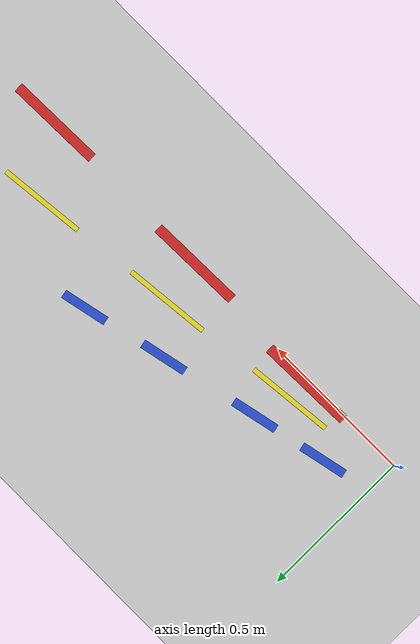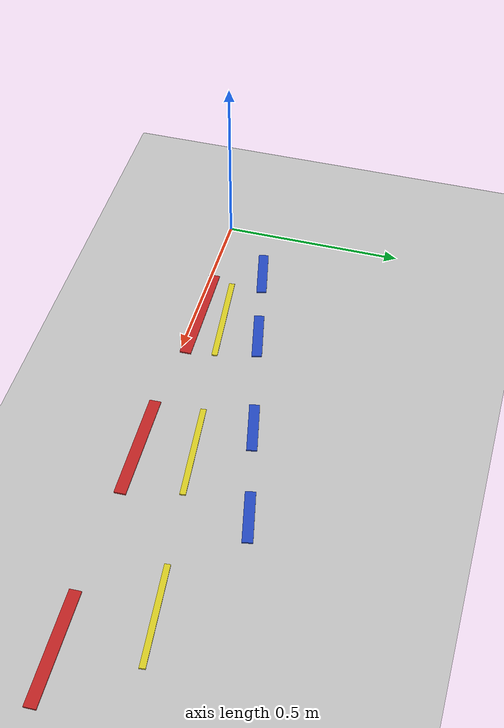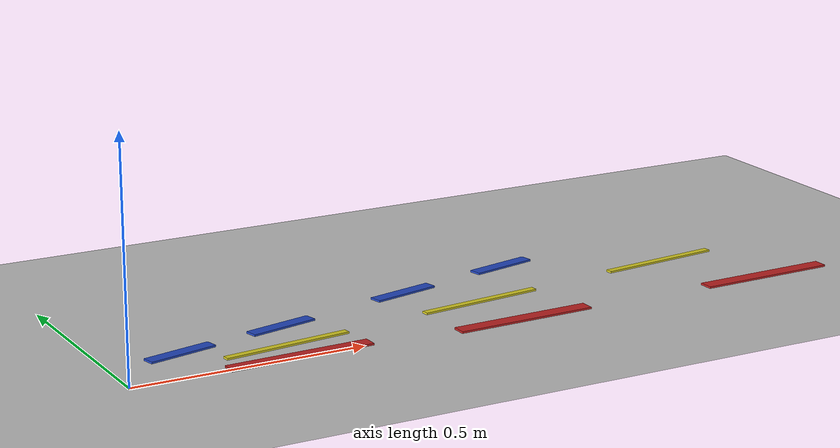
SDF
<sdf version="1.7">
 <world name="curve5">
  <model name="ground_plane">
   <static>1</static>
   <link name="link">
    <collision name="collision">
     <geometry><plane><normal>0 0 1</normal><size>100 100</size></plane></geometry>
     <surface><friction><ode><mu>100</mu><mu2>50</mu2></ode></friction></surface>
    </collision>
    <visual name="visual">
     <cast_shadows>0</cast_shadows>
     <geometry><plane><normal>0 0 1</normal><size>100 100</size></plane></geometry>
     <material>
      <script><uri>file://media/materials/scripts/gazebo.material</uri><name>Gazebo/Grey</name></script>
     </material>
    </visual>
   </link>
  </model>
  <model name="curveRoad_try4">
   <link name="link_clone_0_clone_clone_1">
    <inertial>
     <mass>2.24783e-05</mass>
     <inertia>
      <ixx>5.11852e-10</ixx>
      <ixy>0</ixy>
      <ixz>0</ixz>
      <iyy>1.4911e-07</iyy>
      <iyz>0</iyz>
      <izz>1.49526e-07</izz>
     </inertia>
    </inertial>
    <pose>0.803121 -0.723011 2.2e-05 -3e-05 3e-06 0.102518</pose>
    <visual name="visual">
     <geometry><box><size>0.282093 0.015736 0.005062</size></box></geometry>
     <material>
      <script><name>Gazebo/Yellow</name><uri>file://media/materials/scripts/gazebo.material</uri></script>
      <shader type="pixel"><normal_map>__default__</normal_map></shader>
      <ambient>1 1 0 1</ambient>
      <diffuse>1 1 0 1</diffuse>
      <emissive>0 0 0 1</emissive>
     </material>
    </visual>
    <collision name="collision">
     <geometry><box><size>0.282093 0.015736 0.005062</size></box></geometry>
     <surface>
      <friction>
       <ode><mu>1</mu><mu2>1</mu2><fdir1>0 0 0</fdir1><slip1>0</slip1><slip2>0</slip2></ode>
       <torsional>
        <coefficient>1</coefficient>
        <patch_radius>0</patch_radius>
        <surface_radius>0</surface_radius>
        <use_patch_radius>1</use_patch_radius>
        <ode><slip>0</slip></ode>
       </torsional>
      </friction>
      <bounce><restitution_coefficient>0</restitution_coefficient><threshold>1e+06</threshold></bounce>
      <contact>
       <collide_without_contact>0</collide_without_contact>
       <collide_without_contact_bitmask>1</collide_without_contact_bitmask>
       <collide_bitmask>1</collide_bitmask>
       <ode>
        <soft_cfm>0</soft_cfm>
        <soft_erp>0.2</soft_erp>
        <kp>1e+13</kp>
        <kd>1</kd>
        <max_vel>0.01</max_vel>
        <min_depth>0</min_depth>
       </ode>
       <bullet>
        <split_impulse>1</split_impulse>
        <split_impulse_penetration_threshold>-0.01</split_impulse_penetration_threshold>
        <soft_cfm>0</soft_cfm>
        <soft_erp>0.2</soft_erp>
        <kp>1e+13</kp>
        <kd>1</kd>
       </bullet>
      </contact>
     </surface>
    </collision>
   </link>
   <link name="link_clone_0_clone_clone_2">
    <inertial>
     <mass>2.24783e-05</mass>
     <inertia>
      <ixx>5.11852e-10</ixx>
      <ixy>0</ixy>
      <ixz>0</ixz>
      <iyy>1.4911e-07</iyy>
      <iyz>0</iyz>
      <izz>1.49526e-07</izz>
     </inertia>
    </inertial>
    <pose>0.316059 -0.778554 2.3e-05 -3e-05 3e-06 0.102518</pose>
    <visual name="visual">
     <geometry><box><size>0.282093 0.015736 0.005062</size></box></geometry>
     <material>
      <script><name>Gazebo/Yellow</name><uri>file://media/materials/scripts/gazebo.material</uri></script>
      <shader type="pixel"><normal_map>__default__</normal_map></shader>
      <ambient>1 1 0 1</ambient>
      <diffuse>1 1 0 1</diffuse>
      <emissive>0 0 0 1</emissive>
     </material>
    </visual>
    <collision name="collision">
     <geometry><box><size>0.282093 0.015736 0.005062</size></box></geometry>
     <surface>
      <friction>
       <ode><mu>1</mu><mu2>1</mu2><fdir1>0 0 0</fdir1><slip1>0</slip1><slip2>0</slip2></ode>
       <torsional>
        <coefficient>1</coefficient>
        <patch_radius>0</patch_radius>
        <surface_radius>0</surface_radius>
        <use_patch_radius>1</use_patch_radius>
        <ode><slip>0</slip></ode>
       </torsional>
      </friction>
      <bounce><restitution_coefficient>0</restitution_coefficient><threshold>1e+06</threshold></bounce>
      <contact>
       <collide_without_contact>0</collide_without_contact>
       <collide_without_contact_bitmask>1</collide_without_contact_bitmask>
       <collide_bitmask>1</collide_bitmask>
       <ode>
        <soft_cfm>0</soft_cfm>
        <soft_erp>0.2</soft_erp>
        <kp>1e+13</kp>
        <kd>1</kd>
        <max_vel>0.01</max_vel>
        <min_depth>0</min_depth>
       </ode>
       <bullet>
        <split_impulse>1</split_impulse>
        <split_impulse_penetration_threshold>-0.01</split_impulse_penetration_threshold>
        <soft_cfm>0</soft_cfm>
        <soft_erp>0.2</soft_erp>
        <kp>1e+13</kp>
        <kd>1</kd>
       </bullet>
      </contact>
     </surface>
    </collision>
   </link>
   <link name="link_clone_0_clone_clone_3">
    <inertial>
     <mass>2.24783e-05</mass>
     <inertia>
      <ixx>5.11852e-10</ixx>
      <ixy>0</ixy>
      <ixz>0</ixz>
      <iyy>1.4911e-07</iyy>
      <iyz>0</iyz>
      <izz>1.49526e-07</izz>
     </inertia>
    </inertial>
    <pose>-0.158205 -0.834094 2.4e-05 -3e-05 3e-06 0.102518</pose>
    <visual name="visual">
     <geometry><box><size>0.282093 0.015736 0.005062</size></box></geometry>
     <material>
      <script><name>Gazebo/Yellow</name><uri>file://media/materials/scripts/gazebo.material</uri></script>
      <shader type="pixel"><normal_map>__default__</normal_map></shader>
      <ambient>1 1 0 1</ambient>
      <diffuse>1 1 0 1</diffuse>
      <emissive>0 0 0 1</emissive>
     </material>
    </visual>
    <collision name="collision">
     <geometry><box><size>0.282093 0.015736 0.005062</size></box></geometry>
     <surface>
      <friction>
       <ode><mu>1</mu><mu2>1</mu2><fdir1>0 0 0</fdir1><slip1>0</slip1><slip2>0</slip2></ode>
       <torsional>
        <coefficient>1</coefficient>
        <patch_radius>0</patch_radius>
        <surface_radius>0</surface_radius>
        <use_patch_radius>1</use_patch_radius>
        <ode><slip>0</slip></ode>
       </torsional>
      </friction>
      <bounce><restitution_coefficient>0</restitution_coefficient><threshold>1e+06</threshold></bounce>
      <contact>
       <collide_without_contact>0</collide_without_contact>
       <collide_without_contact_bitmask>1</collide_without_contact_bitmask>
       <collide_bitmask>1</collide_bitmask>
       <ode>
        <soft_cfm>0</soft_cfm>
        <soft_erp>0.2</soft_erp>
        <kp>1e+13</kp>
        <kd>1</kd>
        <max_vel>0.01</max_vel>
        <min_depth>0</min_depth>
       </ode>
       <bullet>
        <split_impulse>1</split_impulse>
        <split_impulse_penetration_threshold>-0.01</split_impulse_penetration_threshold>
        <soft_cfm>0</soft_cfm>
        <soft_erp>0.2</soft_erp>
        <kp>1e+13</kp>
        <kd>1</kd>
       </bullet>
      </contact>
     </surface>
    </collision>
   </link>
   <link name="link_clone_clone_0_clone_clone_clone_0">
    <inertial>
     <mass>4.94957e-05</mass>
     <inertia>
      <ixx>4.15553e-09</ixx>
      <ixy>0</ixy>
      <ixz>0</ixz>
      <iyy>4.0181e-07</iyy>
      <iyz>0</iyz>
      <izz>4.05754e-07</izz>
     </inertia>
    </inertial>
    <pose>0.944116 -0.919914 5.5e-05 -5e-05 3e-06 0.023716</pose>
    <visual name="visual">
     <geometry><box><size>0.312076 0.031335 0.005062</size></box></geometry>
     <material>
      <script><name>Gazebo/Red</name><uri>file://media/materials/scripts/gazebo.material</uri></script>
      <shader type="pixel"><normal_map>__default__</normal_map></shader>
      <ambient>1 0 0 1</ambient>
      <diffuse>1 0 0 1</diffuse>
      <emissive>1 0 0 1</emissive>
      <specular>1 0 0 1</specular>
     </material>
    </visual>
    <collision name="collision">
     <geometry><box><size>0.312076 0.031335 0.005062</size></box></geometry>
     <surface>
      <friction>
       <ode><mu>1</mu><mu2>1</mu2><fdir1>0 0 0</fdir1><slip1>0</slip1><slip2>0</slip2></ode>
       <torsional>
        <coefficient>1</coefficient>
        <patch_radius>0</patch_radius>
        <surface_radius>0</surface_radius>
        <use_patch_radius>1</use_patch_radius>
        <ode><slip>0</slip></ode>
       </torsional>
      </friction>
      <bounce><restitution_coefficient>0</restitution_coefficient><threshold>1e+06</threshold></bounce>
      <contact>
       <collide_without_contact>0</collide_without_contact>
       <collide_without_contact_bitmask>1</collide_without_contact_bitmask>
       <collide_bitmask>1</collide_bitmask>
       <ode>
        <soft_cfm>0</soft_cfm>
        <soft_erp>0.2</soft_erp>
        <kp>1e+13</kp>
        <kd>1</kd>
        <max_vel>0.01</max_vel>
        <min_depth>0</min_depth>
       </ode>
       <bullet>
        <split_impulse>1</split_impulse>
        <split_impulse_penetration_threshold>-0.01</split_impulse_penetration_threshold>
        <soft_cfm>0</soft_cfm>
        <soft_erp>0.2</soft_erp>
        <kp>1e+13</kp>
        <kd>1</kd>
       </bullet>
      </contact>
     </surface>
    </collision>
   </link>
   <link name="link_clone_clone_0_clone_clone_clone_0_clone">
    <inertial>
     <mass>4.94957e-05</mass>
     <inertia>
      <ixx>4.15553e-09</ixx>
      <ixy>0</ixy>
      <ixz>0</ixz>
      <iyy>4.0181e-07</iyy>
      <iyz>0</iyz>
      <izz>4.05754e-07</izz>
     </inertia>
    </inertial>
    <pose>0.337418 -0.919914 6.4e-05 -6e-05 4e-06 0.023716</pose>
    <visual name="visual">
     <geometry><box><size>0.312076 0.031335 0.005062</size></box></geometry>
     <material>
      <script><name>Gazebo/Red</name><uri>file://media/materials/scripts/gazebo.material</uri></script>
      <shader type="pixel"><normal_map>__default__</normal_map></shader>
      <ambient>1 0 0 1</ambient>
      <diffuse>1 0 0 1</diffuse>
      <emissive>1 0 0 1</emissive>
      <specular>1 0 0 1</specular>
     </material>
    </visual>
    <collision name="collision">
     <geometry><box><size>0.312076 0.031335 0.005062</size></box></geometry>
     <surface>
      <friction>
       <ode><mu>1</mu><mu2>1</mu2><fdir1>0 0 0</fdir1><slip1>0</slip1><slip2>0</slip2></ode>
       <torsional>
        <coefficient>1</coefficient>
        <patch_radius>0</patch_radius>
        <surface_radius>0</surface_radius>
        <use_patch_radius>1</use_patch_radius>
        <ode><slip>0</slip></ode>
       </torsional>
      </friction>
      <bounce><restitution_coefficient>0</restitution_coefficient><threshold>1e+06</threshold></bounce>
      <contact>
       <collide_without_contact>0</collide_without_contact>
       <collide_without_contact_bitmask>1</collide_without_contact_bitmask>
       <collide_bitmask>1</collide_bitmask>
       <ode>
        <soft_cfm>0</soft_cfm>
        <soft_erp>0.2</soft_erp>
        <kp>1e+13</kp>
        <kd>1</kd>
        <max_vel>0.01</max_vel>
        <min_depth>0</min_depth>
       </ode>
       <bullet>
        <split_impulse>1</split_impulse>
        <split_impulse_penetration_threshold>-0.01</split_impulse_penetration_threshold>
        <soft_cfm>0</soft_cfm>
        <soft_erp>0.2</soft_erp>
        <kp>1e+13</kp>
        <kd>1</kd>
       </bullet>
      </contact>
     </surface>
    </collision>
   </link>
   <link name="link_clone_clone_0_clone_clone_clone_0_clone_0">
    <inertial>
     <mass>4.94957e-05</mass>
     <inertia>
      <ixx>4.15553e-09</ixx>
      <ixy>0</ixy>
      <ixz>0</ixz>
      <iyy>4.0181e-07</iyy>
      <iyz>0</iyz>
      <izz>4.05754e-07</izz>
     </inertia>
    </inertial>
    <pose>-0.162473 -0.902817 6.4e-05 -6e-05 4e-06 0.023716</pose>
    <visual name="visual">
     <geometry><box><size>0.312076 0.031335 0.005062</size></box></geometry>
     <material>
      <script><name>Gazebo/Red</name><uri>file://media/materials/scripts/gazebo.material</uri></script>
      <shader type="pixel"><normal_map>__default__</normal_map></shader>
      <ambient>1 0 0 1</ambient>
      <diffuse>1 0 0 1</diffuse>
      <emissive>1 0 0 1</emissive>
      <specular>1 0 0 1</specular>
     </material>
    </visual>
    <collision name="collision">
     <geometry><box><size>0.312076 0.031335 0.005062</size></box></geometry>
     <surface>
      <friction>
       <ode><mu>1</mu><mu2>1</mu2><fdir1>0 0 0</fdir1><slip1>0</slip1><slip2>0</slip2></ode>
       <torsional>
        <coefficient>1</coefficient>
        <patch_radius>0</patch_radius>
        <surface_radius>0</surface_radius>
        <use_patch_radius>1</use_patch_radius>
        <ode><slip>0</slip></ode>
       </torsional>
      </friction>
      <bounce><restitution_coefficient>0</restitution_coefficient><threshold>1e+06</threshold></bounce>
      <contact>
       <collide_without_contact>0</collide_without_contact>
       <collide_without_contact_bitmask>1</collide_without_contact_bitmask>
       <collide_bitmask>1</collide_bitmask>
       <ode>
        <soft_cfm>0</soft_cfm>
        <soft_erp>0.2</soft_erp>
        <kp>1e+13</kp>
        <kd>1</kd>
        <max_vel>0.01</max_vel>
        <min_depth>0</min_depth>
       </ode>
       <bullet>
        <split_impulse>1</split_impulse>
        <split_impulse_penetration_threshold>-0.01</split_impulse_penetration_threshold>
        <soft_cfm>0</soft_cfm>
        <soft_erp>0.2</soft_erp>
        <kp>1e+13</kp>
        <kd>1</kd>
       </bullet>
      </contact>
     </surface>
    </collision>
   </link>
   <link name="link_clone_clone_clone_clone_clone_0_clone_0_clone_1">
    <inertial>
     <mass>2.16157e-05</mass>
     <inertia>
      <ixx>1.43991e-09</ixx>
      <ixy>0</ixy>
      <ixz>0</ixz>
      <iyy>4.24872e-08</iyy>
      <iyz>0</iyz>
      <izz>4.38348e-08</izz>
     </inertia>
    </inertial>
    <pose>0.479094 -0.586894 2.3e-05 -7e-05 1.5e-05 0.213842</pose>
    <visual name="visual">
     <geometry><box><size>0.153497 0.027816 0.005062</size></box></geometry>
     <material>
      <script><name>Gazebo/Blue</name><uri>file://media/materials/scripts/gazebo.material</uri></script>
      <shader type="pixel"><normal_map>__default__</normal_map></shader>
      <ambient>0 0 1 1</ambient>
      <diffuse>0 0 1 1</diffuse>
      <emissive>0 0 1 1</emissive>
      <specular>0 0 1 1</specular>
     </material>
    </visual>
    <collision name="collision">
     <geometry><box><size>0.153497 0.027816 0.005062</size></box></geometry>
     <surface>
      <friction>
       <ode><mu>1</mu><mu2>1</mu2><fdir1>0 0 0</fdir1><slip1>0</slip1><slip2>0</slip2></ode>
       <torsional>
        <coefficient>1</coefficient>
        <patch_radius>0</patch_radius>
        <surface_radius>0</surface_radius>
        <use_patch_radius>1</use_patch_radius>
        <ode><slip>0</slip></ode>
       </torsional>
      </friction>
      <bounce><restitution_coefficient>0</restitution_coefficient><threshold>1e+06</threshold></bounce>
      <contact>
       <collide_without_contact>0</collide_without_contact>
       <collide_without_contact_bitmask>1</collide_without_contact_bitmask>
       <collide_bitmask>1</collide_bitmask>
       <ode>
        <soft_cfm>0</soft_cfm>
        <soft_erp>0.2</soft_erp>
        <kp>1e+13</kp>
        <kd>1</kd>
        <max_vel>0.01</max_vel>
        <min_depth>0</min_depth>
       </ode>
       <bullet>
        <split_impulse>1</split_impulse>
        <split_impulse_penetration_threshold>-0.01</split_impulse_penetration_threshold>
        <soft_cfm>0</soft_cfm>
        <soft_erp>0.2</soft_erp>
        <kp>1e+13</kp>
        <kd>1</kd>
       </bullet>
      </contact>
     </surface>
    </collision>
   </link>
   <link name="link_clone_clone_clone_clone_clone_0_clone_0_clone_2">
    <inertial>
     <mass>2.16157e-05</mass>
     <inertia>
      <ixx>1.43991e-09</ixx>
      <ixy>0</ixy>
      <ixz>0</ixz>
      <iyy>4.24872e-08</iyy>
      <iyz>0</iyz>
      <izz>4.38348e-08</izz>
     </inertia>
    </inertial>
    <pose>0.201361 -0.650979 2.4e-05 -7e-05 1.5e-05 0.213842</pose>
    <visual name="visual">
     <geometry><box><size>0.153497 0.027816 0.005062</size></box></geometry>
     <material>
      <script><name>Gazebo/Blue</name><uri>file://media/materials/scripts/gazebo.material</uri></script>
      <shader type="pixel"><normal_map>__default__</normal_map></shader>
      <ambient>0 0 1 1</ambient>
      <diffuse>0 0 1 1</diffuse>
      <emissive>0 0 1 1</emissive>
      <specular>0 0 1 1</specular>
     </material>
    </visual>
    <collision name="collision">
     <geometry><box><size>0.153497 0.027816 0.005062</size></box></geometry>
     <surface>
      <friction>
       <ode><mu>1</mu><mu2>1</mu2><fdir1>0 0 0</fdir1><slip1>0</slip1><slip2>0</slip2></ode>
       <torsional>
        <coefficient>1</coefficient>
        <patch_radius>0</patch_radius>
        <surface_radius>0</surface_radius>
        <use_patch_radius>1</use_patch_radius>
        <ode><slip>0</slip></ode>
       </torsional>
      </friction>
      <bounce><restitution_coefficient>0</restitution_coefficient><threshold>1e+06</threshold></bounce>
      <contact>
       <collide_without_contact>0</collide_without_contact>
       <collide_without_contact_bitmask>1</collide_without_contact_bitmask>
       <collide_bitmask>1</collide_bitmask>
       <ode>
        <soft_cfm>0</soft_cfm>
        <soft_erp>0.2</soft_erp>
        <kp>1e+13</kp>
        <kd>1</kd>
        <max_vel>0.01</max_vel>
        <min_depth>0</min_depth>
       </ode>
       <bullet>
        <split_impulse>1</split_impulse>
        <split_impulse_penetration_threshold>-0.01</split_impulse_penetration_threshold>
        <soft_cfm>0</soft_cfm>
        <soft_erp>0.2</soft_erp>
        <kp>1e+13</kp>
        <kd>1</kd>
       </bullet>
      </contact>
     </surface>
    </collision>
   </link>
   <link name="link_clone_clone_clone_clone_clone_0_clone_0_clone_3">
    <inertial>
     <mass>2.16157e-05</mass>
     <inertia>
      <ixx>1.43991e-09</ixx>
      <ixy>0</ixy>
      <ixz>0</ixz>
      <iyy>4.24872e-08</iyy>
      <iyz>0</iyz>
      <izz>4.38348e-08</izz>
     </inertia>
    </inertial>
    <pose>-0.119074 -0.723614 2.4e-05 -7e-05 1.5e-05 0.213842</pose>
    <visual name="visual">
     <geometry><box><size>0.153497 0.027816 0.005062</size></box></geometry>
     <material>
      <script><name>Gazebo/Blue</name><uri>file://media/materials/scripts/gazebo.material</uri></script>
      <shader type="pixel"><normal_map>__default__</normal_map></shader>
      <ambient>0 0 1 1</ambient>
      <diffuse>0 0 1 1</diffuse>
      <emissive>0 0 1 1</emissive>
      <specular>0 0 1 1</specular>
     </material>
    </visual>
    <collision name="collision">
     <geometry><box><size>0.153497 0.027816 0.005062</size></box></geometry>
     <surface>
      <friction>
       <ode><mu>1</mu><mu2>1</mu2><fdir1>0 0 0</fdir1><slip1>0</slip1><slip2>0</slip2></ode>
       <torsional>
        <coefficient>1</coefficient>
        <patch_radius>0</patch_radius>
        <surface_radius>0</surface_radius>
        <use_patch_radius>1</use_patch_radius>
        <ode><slip>0</slip></ode>
       </torsional>
      </friction>
      <bounce><restitution_coefficient>0</restitution_coefficient><threshold>1e+06</threshold></bounce>
      <contact>
       <collide_without_contact>0</collide_without_contact>
       <collide_without_contact_bitmask>1</collide_without_contact_bitmask>
       <collide_bitmask>1</collide_bitmask>
       <ode>
        <soft_cfm>0</soft_cfm>
        <soft_erp>0.2</soft_erp>
        <kp>1e+13</kp>
        <kd>1</kd>
        <max_vel>0.01</max_vel>
        <min_depth>0</min_depth>
       </ode>
       <bullet>
        <split_impulse>1</split_impulse>
        <split_impulse_penetration_threshold>-0.01</split_impulse_penetration_threshold>
        <soft_cfm>0</soft_cfm>
        <soft_erp>0.2</soft_erp>
        <kp>1e+13</kp>
        <kd>1</kd>
       </bullet>
      </contact>
     </surface>
    </collision>
   </link>
   <link name="link_clone_clone_clone_clone_clone_0_clone_0_clone_4">
    <inertial>
     <mass>2.16157e-05</mass>
     <inertia>
      <ixx>1.43991e-09</ixx>
      <ixy>0</ixy>
      <ixz>0</ixz>
      <iyy>4.24872e-08</iyy>
      <iyz>0</iyz>
      <izz>4.38348e-08</izz>
     </inertia>
    </inertial>
    <pose>-0.362613 -0.774879 2.5e-05 -7e-05 1.5e-05 0.213842</pose>
    <visual name="visual">
     <geometry><box><size>0.153497 0.027816 0.005062</size></box></geometry>
     <material>
      <script><name>Gazebo/Blue</name><uri>file://media/materials/scripts/gazebo.material</uri></script>
      <shader type="pixel"><normal_map>__default__</normal_map></shader>
      <ambient>0 0 1 1</ambient>
      <diffuse>0 0 1 1</diffuse>
      <emissive>0 0 1 1</emissive>
      <specular>0 0 1 1</specular>
     </material>
    </visual>
    <collision name="collision">
     <geometry><box><size>0.153497 0.027816 0.005062</size></box></geometry>
     <surface>
      <friction>
       <ode><mu>1</mu><mu2>1</mu2><fdir1>0 0 0</fdir1><slip1>0</slip1><slip2>0</slip2></ode>
       <torsional>
        <coefficient>1</coefficient>
        <patch_radius>0</patch_radius>
        <surface_radius>0</surface_radius>
        <use_patch_radius>1</use_patch_radius>
        <ode><slip>0</slip></ode>
       </torsional>
      </friction>
      <bounce><restitution_coefficient>0</restitution_coefficient><threshold>1e+06</threshold></bounce>
      <contact>
       <collide_without_contact>0</collide_without_contact>
       <collide_without_contact_bitmask>1</collide_without_contact_bitmask>
       <collide_bitmask>1</collide_bitmask>
       <ode>
        <soft_cfm>0</soft_cfm>
        <soft_erp>0.2</soft_erp>
        <kp>1e+13</kp>
        <kd>1</kd>
        <max_vel>0.01</max_vel>
        <min_depth>0</min_depth>
       </ode>
       <bullet>
        <split_impulse>1</split_impulse>
        <split_impulse_penetration_threshold>-0.01</split_impulse_penetration_threshold>
        <soft_cfm>0</soft_cfm>
        <soft_erp>0.2</soft_erp>
        <kp>1e+13</kp>
        <kd>1</kd>
       </bullet>
      </contact>
     </surface>
    </collision>
   </link>
   <static>1</static>
   <pose>0.52678 0.915402 5e-06 1e-05 -0 0</pose>
  </model>
 </world>
</sdf>
